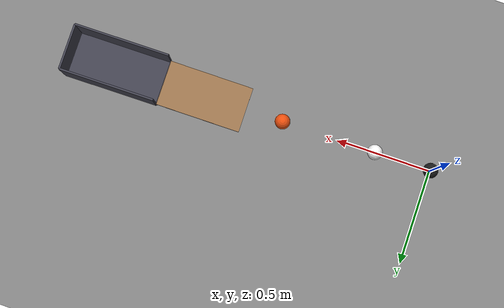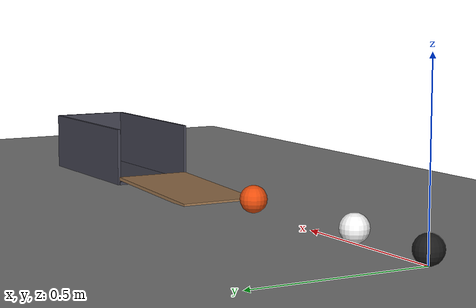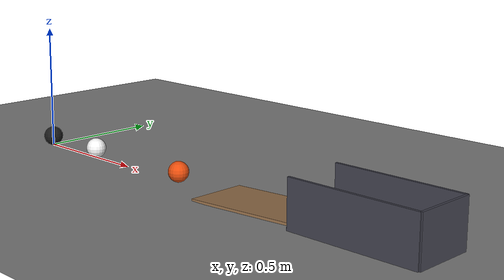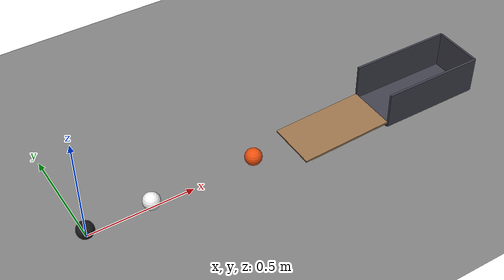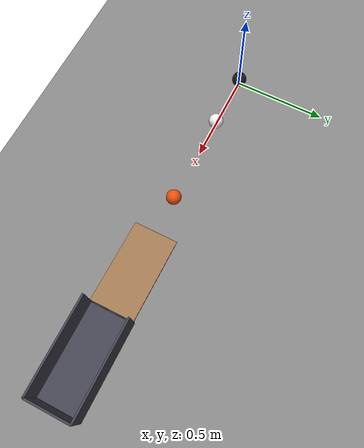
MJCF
<mujoco model="three_balls_into_a_cup">
  <compiler angle="radian"/>
  <option timestep="0.002"/>
  <worldbody>
    <geom name="floor" type="plane" size="6 6 0.1" friction="0.6 0.0001 0.0001"/>
    <body name="ball1" pos="0 0 0.04">
      <freejoint/>
      <geom name="ball1" type="sphere" pos="0 0 0" size="0.04" mass="0.2" condim="6" friction="0.6 0.0001 0.0001" solref="0.01 0.2" rgba="0.1 0.1 0.1 1"/>
    </body>
    <body name="ball2" pos="0.3 0 0.04">
      <freejoint/>
      <geom name="ball2" type="sphere" pos="0 0 0" size="0.04" mass="0.2" condim="6" friction="0.6 0.0001 0.0001" solref="0.01 0.2" rgba="0.95 0.95 0.95 1"/>
    </body>
    <body name="ball3" pos="0.8 0 0.04">
      <freejoint/>
      <geom name="ball3" type="sphere" pos="0 0 0" size="0.04" mass="0.2" condim="6" friction="0.6 0.0001 0.0001" solref="0.01 0.2" rgba="0.9 0.3 0.05 1"/>
    </body>
    <body name="ramp">
      <geom name="ramp" type="box" pos="1.225 0 0.01" size="0.225222 0.12 0.005" euler="0 -0.0444152 0" friction="0.6 0.0001 0.0001" solref="0.01 1" rgba="0.6 0.45 0.3 1"/>
    </body>
    <body name="cup">
      <geom name="cup_base" type="box" pos="1.7 0 0.001" size="0.25 0.12 0.001" friction="0.8 0.02 0.08" solref="0.01 1" rgba="0.25 0.25 0.3 1"/>
      <geom name="cup_near_wall" type="box" pos="1.45 0 0.005" size="0.005 0.12 0.005" friction="0.8 0.02 0.08" solref="0.01 1" rgba="0.25 0.25 0.3 1"/>
      <geom name="cup_far_wall" type="box" pos="1.95 0 0.09" size="0.005 0.12 0.09" friction="0.8 0.02 0.08" solref="0.01 1" rgba="0.25 0.25 0.3 1"/>
      <geom name="cup_left_wall" type="box" pos="1.7 0.12 0.09" size="0.25 0.005 0.09" friction="0.8 0.02 0.08" solref="0.01 1" rgba="0.25 0.25 0.3 1"/>
      <geom name="cup_right_wall" type="box" pos="1.7 -0.12 0.09" size="0.25 0.005 0.09" friction="0.8 0.02 0.08" solref="0.01 1" rgba="0.25 0.25 0.3 1"/>
    </body>
  </worldbody>
  <keyframe>
    <key name="start" qpos="0 0 0.04 1 0 0 0 0.3 0 0.04 1 0 0 0 0.8 0 0.04 1 0 0 0" qvel="4 0 0 0 100 0 0 0 0 0 0 0 0 0 0 0 0 0"/>
  </keyframe>
</mujoco>
